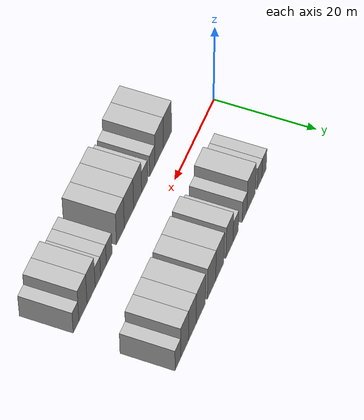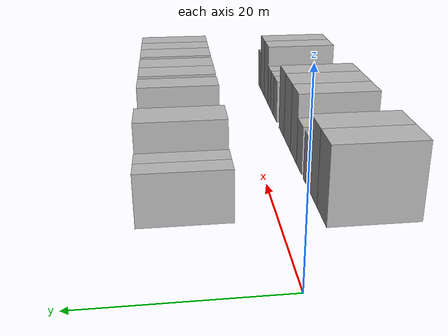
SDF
<sdf version="1.6">
 <world name="default">
  <model name="building_1">
   <static>1</static>
   <pose>13.2009 9.5000 0 0.000000 0.000000 1.570796</pose>
   <link name="link">
    <pose>0 0 3.00 0 0 0</pose>
    <collision name="collision"><geometry><box><size>10.0000 2.4018 6.0000</size></box></geometry></collision>
    <visual name="visual">
     <cast_shadows>0</cast_shadows>
     <geometry><box><size>10.0000 2.4018 6.0000</size></box></geometry>
     <material>
      <script>
       <uri>model://HANNAS_wall/materials/scripts</uri>
       <uri>model://HANNAS_wall/materials/textures</uri>
       <name>vrc/HANNAS_wall</name>
      </script>
     </material>
    </visual>
   </link>
  </model>
  <model name="building_2">
   <static>1</static>
   <pose>15.6214 9.5000 0 0.000000 0.000000 1.570796</pose>
   <link name="link">
    <pose>0 0 3.00 0 0 0</pose>
    <collision name="collision"><geometry><box><size>10.0000 2.4392 6.0000</size></box></geometry></collision>
    <visual name="visual">
     <cast_shadows>0</cast_shadows>
     <geometry><box><size>10.0000 2.4392 6.0000</size></box></geometry>
     <material>
      <script>
       <uri>model://HANNAS_wall/materials/scripts</uri>
       <uri>model://HANNAS_wall/materials/textures</uri>
       <name>vrc/HANNAS_wall</name>
      </script>
     </material>
    </visual>
   </link>
  </model>
  <model name="building_3">
   <static>1</static>
   <pose>20.0575 9.5000 0 0.000000 0.000000 1.570796</pose>
   <link name="link">
    <pose>0 0 4.50 0 0 0</pose>
    <collision name="collision"><geometry><box><size>10.0000 4.4329 9.0000</size></box></geometry></collision>
    <visual name="visual">
     <cast_shadows>0</cast_shadows>
     <geometry><box><size>10.0000 4.4329 9.0000</size></box></geometry>
     <material>
      <script>
       <uri>model://HANNAS_wall/materials/scripts</uri>
       <uri>model://HANNAS_wall/materials/textures</uri>
       <name>vrc/HANNAS_wall</name>
      </script>
     </material>
    </visual>
   </link>
  </model>
  <model name="building_4">
   <static>1</static>
   <pose>23.4861 9.5000 0 0.000000 0.000000 1.570796</pose>
   <link name="link">
    <pose>0 0 3.00 0 0 0</pose>
    <collision name="collision"><geometry><box><size>10.0000 2.4244 6.0000</size></box></geometry></collision>
    <visual name="visual">
     <cast_shadows>0</cast_shadows>
     <geometry><box><size>10.0000 2.4244 6.0000</size></box></geometry>
     <material>
      <script>
       <uri>model://HANNAS_wall/materials/scripts</uri>
       <uri>model://HANNAS_wall/materials/textures</uri>
       <name>vrc/HANNAS_wall</name>
      </script>
     </material>
    </visual>
   </link>
  </model>
  <model name="building_5">
   <static>1</static>
   <pose>28.0650 9.5000 0 0.000000 0.000000 1.570796</pose>
   <link name="link">
    <pose>0 0 3.00 0 0 0</pose>
    <collision name="collision"><geometry><box><size>10.0000 2.7334 6.0000</size></box></geometry></collision>
    <visual name="visual">
     <cast_shadows>0</cast_shadows>
     <geometry><box><size>10.0000 2.7334 6.0000</size></box></geometry>
     <material>
      <script>
       <uri>model://HANNAS_wall/materials/scripts</uri>
       <uri>model://HANNAS_wall/materials/textures</uri>
       <name>vrc/HANNAS_wall</name>
      </script>
     </material>
    </visual>
   </link>
  </model>
  <model name="building_6">
   <static>1</static>
   <pose>31.2534 9.5000 0 0.000000 0.000000 1.570796</pose>
   <link name="link">
    <pose>0 0 4.50 0 0 0</pose>
    <collision name="collision"><geometry><box><size>10.0000 3.6433 9.0000</size></box></geometry></collision>
    <visual name="visual">
     <cast_shadows>0</cast_shadows>
     <geometry><box><size>10.0000 3.6433 9.0000</size></box></geometry>
     <material>
      <script>
       <uri>model://HANNAS_wall/materials/scripts</uri>
       <uri>model://HANNAS_wall/materials/textures</uri>
       <name>vrc/HANNAS_wall</name>
      </script>
     </material>
    </visual>
   </link>
  </model>
  <model name="building_7">
   <static>1</static>
   <pose>36.1332 9.5000 0 0.000000 0.000000 1.570796</pose>
   <link name="link">
    <pose>0 0 4.50 0 0 0</pose>
    <collision name="collision"><geometry><box><size>10.0000 4.1164 9.0000</size></box></geometry></collision>
    <visual name="visual">
     <cast_shadows>0</cast_shadows>
     <geometry><box><size>10.0000 4.1164 9.0000</size></box></geometry>
     <material>
      <script>
       <uri>model://HANNAS_wall/materials/scripts</uri>
       <uri>model://HANNAS_wall/materials/textures</uri>
       <name>vrc/HANNAS_wall</name>
      </script>
     </material>
    </visual>
   </link>
  </model>
  <model name="building_8">
   <static>1</static>
   <pose>40.2678 9.5000 0 0.000000 0.000000 1.570796</pose>
   <link name="link">
    <pose>0 0 4.50 0 0 0</pose>
    <collision name="collision"><geometry><box><size>10.0000 4.1528 9.0000</size></box></geometry></collision>
    <visual name="visual">
     <cast_shadows>0</cast_shadows>
     <geometry><box><size>10.0000 4.1528 9.0000</size></box></geometry>
     <material>
      <script>
       <uri>model://HANNAS_wall/materials/scripts</uri>
       <uri>model://HANNAS_wall/materials/textures</uri>
       <name>vrc/HANNAS_wall</name>
      </script>
     </material>
    </visual>
   </link>
  </model>
  <model name="building_9">
   <static>1</static>
   <pose>45.5697 9.5000 0 0.000000 0.000000 1.570796</pose>
   <link name="link">
    <pose>0 0 4.50 0 0 0</pose>
    <collision name="collision"><geometry><box><size>10.0000 4.4511 9.0000</size></box></geometry></collision>
    <visual name="visual">
     <cast_shadows>0</cast_shadows>
     <geometry><box><size>10.0000 4.4511 9.0000</size></box></geometry>
     <material>
      <script>
       <uri>model://HANNAS_wall/materials/scripts</uri>
       <uri>model://HANNAS_wall/materials/textures</uri>
       <name>vrc/HANNAS_wall</name>
      </script>
     </material>
    </visual>
   </link>
  </model>
  <model name="building_10">
   <static>1</static>
   <pose>49.6884 9.5000 0 0.000000 0.000000 1.570796</pose>
   <link name="link">
    <pose>0 0 4.50 0 0 0</pose>
    <collision name="collision"><geometry><box><size>10.0000 3.7864 9.0000</size></box></geometry></collision>
    <visual name="visual">
     <cast_shadows>0</cast_shadows>
     <geometry><box><size>10.0000 3.7864 9.0000</size></box></geometry>
     <material>
      <script>
       <uri>model://HANNAS_wall/materials/scripts</uri>
       <uri>model://HANNAS_wall/materials/textures</uri>
       <name>vrc/HANNAS_wall</name>
      </script>
     </material>
    </visual>
   </link>
  </model>
  <model name="building_11">
   <static>1</static>
   <pose>53.4665 9.5000 0 0.000000 0.000000 1.570796</pose>
   <link name="link">
    <pose>0 0 4.50 0 0 0</pose>
    <collision name="collision"><geometry><box><size>10.0000 3.7699 9.0000</size></box></geometry></collision>
    <visual name="visual">
     <cast_shadows>0</cast_shadows>
     <geometry><box><size>10.0000 3.7699 9.0000</size></box></geometry>
     <material>
      <script>
       <uri>model://HANNAS_wall/materials/scripts</uri>
       <uri>model://HANNAS_wall/materials/textures</uri>
       <name>vrc/HANNAS_wall</name>
      </script>
     </material>
    </visual>
   </link>
  </model>
  <model name="building_12">
   <static>1</static>
   <pose>56.6749 9.5000 0 0.000000 0.000000 1.570796</pose>
   <link name="link">
    <pose>0 0 3.00 0 0 0</pose>
    <collision name="collision"><geometry><box><size>10.0000 2.6469 6.0000</size></box></geometry></collision>
    <visual name="visual">
     <cast_shadows>0</cast_shadows>
     <geometry><box><size>10.0000 2.6469 6.0000</size></box></geometry>
     <material>
      <script>
       <uri>model://HANNAS_wall/materials/scripts</uri>
       <uri>model://HANNAS_wall/materials/textures</uri>
       <name>vrc/HANNAS_wall</name>
      </script>
     </material>
    </visual>
   </link>
  </model>
  <model name="building_49">
   <static>1</static>
   <pose>12.0807 -9.5000 0 0.000000 0.000000 1.570796</pose>
   <link name="link">
    <pose>0 0 4.50 0 0 0</pose>
    <collision name="collision"><geometry><box><size>10.0000 4.1614 9.0000</size></box></geometry></collision>
    <visual name="visual">
     <cast_shadows>0</cast_shadows>
     <geometry><box><size>10.0000 4.1614 9.0000</size></box></geometry>
     <material>
      <script>
       <uri>model://HANNAS_wall/materials/scripts</uri>
       <uri>model://HANNAS_wall/materials/textures</uri>
       <name>vrc/HANNAS_wall</name>
      </script>
     </material>
    </visual>
   </link>
  </model>
  <model name="building_50">
   <static>1</static>
   <pose>16.2794 -9.5000 0 0.000000 0.000000 1.570796</pose>
   <link name="link">
    <pose>0 0 4.50 0 0 0</pose>
    <collision name="collision"><geometry><box><size>10.0000 4.2360 9.0000</size></box></geometry></collision>
    <visual name="visual">
     <cast_shadows>0</cast_shadows>
     <geometry><box><size>10.0000 4.2360 9.0000</size></box></geometry>
     <material>
      <script>
       <uri>model://HANNAS_wall/materials/scripts</uri>
       <uri>model://HANNAS_wall/materials/textures</uri>
       <name>vrc/HANNAS_wall</name>
      </script>
     </material>
    </visual>
   </link>
  </model>
  <model name="building_51">
   <static>1</static>
   <pose>19.6999 -9.5000 0 0.000000 0.000000 1.570796</pose>
   <link name="link">
    <pose>0 0 3.00 0 0 0</pose>
    <collision name="collision"><geometry><box><size>10.0000 2.6049 6.0000</size></box></geometry></collision>
    <visual name="visual">
     <cast_shadows>0</cast_shadows>
     <geometry><box><size>10.0000 2.6049 6.0000</size></box></geometry>
     <material>
      <script>
       <uri>model://HANNAS_wall/materials/scripts</uri>
       <uri>model://HANNAS_wall/materials/textures</uri>
       <name>vrc/HANNAS_wall</name>
      </script>
     </material>
    </visual>
   </link>
  </model>
  <model name="building_52">
   <static>1</static>
   <pose>23.4866 -9.5000 0 0.000000 0.000000 1.570796</pose>
   <link name="link">
    <pose>0 0 3.00 0 0 0</pose>
    <collision name="collision"><geometry><box><size>10.0000 2.9686 6.0000</size></box></geometry></collision>
    <visual name="visual">
     <cast_shadows>0</cast_shadows>
     <geometry><box><size>10.0000 2.9686 6.0000</size></box></geometry>
     <material>
      <script>
       <uri>model://HANNAS_wall/materials/scripts</uri>
       <uri>model://HANNAS_wall/materials/textures</uri>
       <name>vrc/HANNAS_wall</name>
      </script>
     </material>
    </visual>
   </link>
  </model>
  <model name="building_53">
   <static>1</static>
   <pose>26.9066 -9.5000 0 0.000000 0.000000 1.570796</pose>
   <link name="link">
    <pose>0 0 4.50 0 0 0</pose>
    <collision name="collision"><geometry><box><size>10.0000 3.8714 9.0000</size></box></geometry></collision>
    <visual name="visual">
     <cast_shadows>0</cast_shadows>
     <geometry><box><size>10.0000 3.8714 9.0000</size></box></geometry>
     <material>
      <script>
       <uri>model://HANNAS_wall/materials/scripts</uri>
       <uri>model://HANNAS_wall/materials/textures</uri>
       <name>vrc/HANNAS_wall</name>
      </script>
     </material>
    </visual>
   </link>
  </model>
  <model name="building_54">
   <static>1</static>
   <pose>31.0897 -9.5000 0 0.000000 0.000000 1.570796</pose>
   <link name="link">
    <pose>0 0 4.50 0 0 0</pose>
    <collision name="collision"><geometry><box><size>10.0000 4.4949 9.0000</size></box></geometry></collision>
    <visual name="visual">
     <cast_shadows>0</cast_shadows>
     <geometry><box><size>10.0000 4.4949 9.0000</size></box></geometry>
     <material>
      <script>
       <uri>model://HANNAS_wall/materials/scripts</uri>
       <uri>model://HANNAS_wall/materials/textures</uri>
       <name>vrc/HANNAS_wall</name>
      </script>
     </material>
    </visual>
   </link>
  </model>
  <model name="building_55">
   <static>1</static>
   <pose>35.2125 -9.5000 0 0.000000 0.000000 1.570796</pose>
   <link name="link">
    <pose>0 0 4.50 0 0 0</pose>
    <collision name="collision"><geometry><box><size>10.0000 3.7507 9.0000</size></box></geometry></collision>
    <visual name="visual">
     <cast_shadows>0</cast_shadows>
     <geometry><box><size>10.0000 3.7507 9.0000</size></box></geometry>
     <material>
      <script>
       <uri>model://HANNAS_wall/materials/scripts</uri>
       <uri>model://HANNAS_wall/materials/textures</uri>
       <name>vrc/HANNAS_wall</name>
      </script>
     </material>
    </visual>
   </link>
  </model>
  <model name="building_56">
   <static>1</static>
   <pose>40.4596 -9.5000 0 0.000000 0.000000 1.570796</pose>
   <link name="link">
    <pose>0 0 3.00 0 0 0</pose>
    <collision name="collision"><geometry><box><size>10.0000 2.7436 6.0000</size></box></geometry></collision>
    <visual name="visual">
     <cast_shadows>0</cast_shadows>
     <geometry><box><size>10.0000 2.7436 6.0000</size></box></geometry>
     <material>
      <script>
       <uri>model://HANNAS_wall/materials/scripts</uri>
       <uri>model://HANNAS_wall/materials/textures</uri>
       <name>vrc/HANNAS_wall</name>
      </script>
     </material>
    </visual>
   </link>
  </model>
  <model name="building_57">
   <static>1</static>
   <pose>43.1601 -9.5000 0 0.000000 0.000000 1.570796</pose>
   <link name="link">
    <pose>0 0 3.00 0 0 0</pose>
    <collision name="collision"><geometry><box><size>10.0000 2.6574 6.0000</size></box></geometry></collision>
    <visual name="visual">
     <cast_shadows>0</cast_shadows>
     <geometry><box><size>10.0000 2.6574 6.0000</size></box></geometry>
     <material>
      <script>
       <uri>model://HANNAS_wall/materials/scripts</uri>
       <uri>model://HANNAS_wall/materials/textures</uri>
       <name>vrc/HANNAS_wall</name>
      </script>
     </material>
    </visual>
   </link>
  </model>
  <model name="building_58">
   <static>1</static>
   <pose>45.7511 -9.5000 0 0.000000 0.000000 1.570796</pose>
   <link name="link">
    <pose>0 0 3.00 0 0 0</pose>
    <collision name="collision"><geometry><box><size>10.0000 2.5245 6.0000</size></box></geometry></collision>
    <visual name="visual">
     <cast_shadows>0</cast_shadows>
     <geometry><box><size>10.0000 2.5245 6.0000</size></box></geometry>
     <material>
      <script>
       <uri>model://HANNAS_wall/materials/scripts</uri>
       <uri>model://HANNAS_wall/materials/textures</uri>
       <name>vrc/HANNAS_wall</name>
      </script>
     </material>
    </visual>
   </link>
  </model>
  <model name="building_59">
   <static>1</static>
   <pose>48.8729 -9.5000 0 0.000000 0.000000 1.570796</pose>
   <link name="link">
    <pose>0 0 4.50 0 0 0</pose>
    <collision name="collision"><geometry><box><size>10.0000 3.7191 9.0000</size></box></geometry></collision>
    <visual name="visual">
     <cast_shadows>0</cast_shadows>
     <geometry><box><size>10.0000 3.7191 9.0000</size></box></geometry>
     <material>
      <script>
       <uri>model://HANNAS_wall/materials/scripts</uri>
       <uri>model://HANNAS_wall/materials/textures</uri>
       <name>vrc/HANNAS_wall</name>
      </script>
     </material>
    </visual>
   </link>
  </model>
  <model name="building_60">
   <static>1</static>
   <pose>52.5866 -9.5000 0 0.000000 0.000000 1.570796</pose>
   <link name="link">
    <pose>0 0 4.50 0 0 0</pose>
    <collision name="collision"><geometry><box><size>10.0000 3.7082 9.0000</size></box></geometry></collision>
    <visual name="visual">
     <cast_shadows>0</cast_shadows>
     <geometry><box><size>10.0000 3.7082 9.0000</size></box></geometry>
     <material>
      <script>
       <uri>model://HANNAS_wall/materials/scripts</uri>
       <uri>model://HANNAS_wall/materials/textures</uri>
       <name>vrc/HANNAS_wall</name>
      </script>
     </material>
    </visual>
   </link>
  </model>
  <model name="building_61">
   <static>1</static>
   <pose>55.7286 -9.5000 0 0.000000 0.000000 1.570796</pose>
   <link name="link">
    <pose>0 0 3.00 0 0 0</pose>
    <collision name="collision"><geometry><box><size>10.0000 2.5757 6.0000</size></box></geometry></collision>
    <visual name="visual">
     <cast_shadows>0</cast_shadows>
     <geometry><box><size>10.0000 2.5757 6.0000</size></box></geometry>
     <material>
      <script>
       <uri>model://HANNAS_wall/materials/scripts</uri>
       <uri>model://HANNAS_wall/materials/textures</uri>
       <name>vrc/HANNAS_wall</name>
      </script>
     </material>
    </visual>
   </link>
  </model>
 </world>
</sdf>
